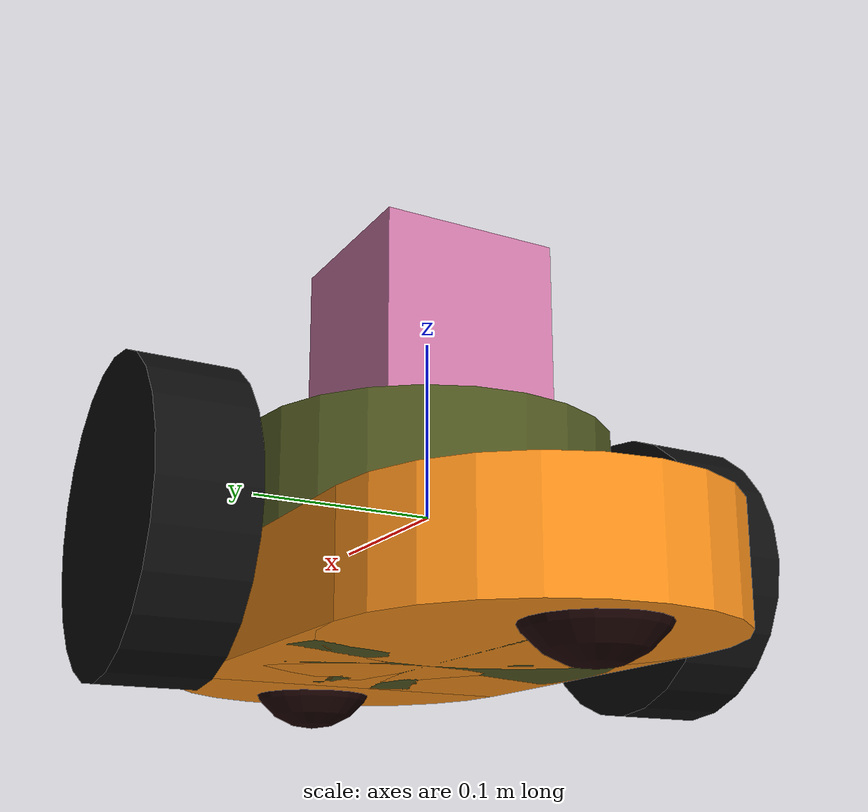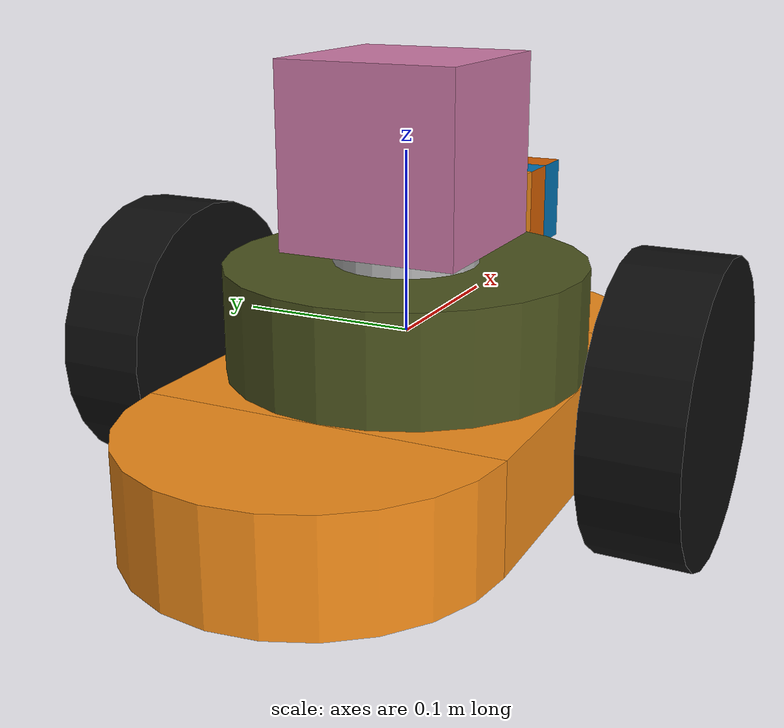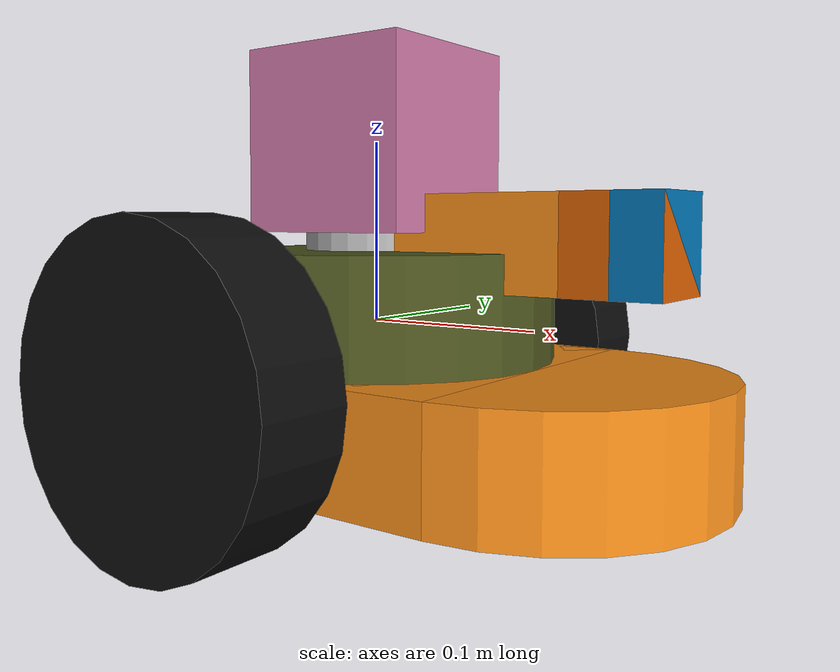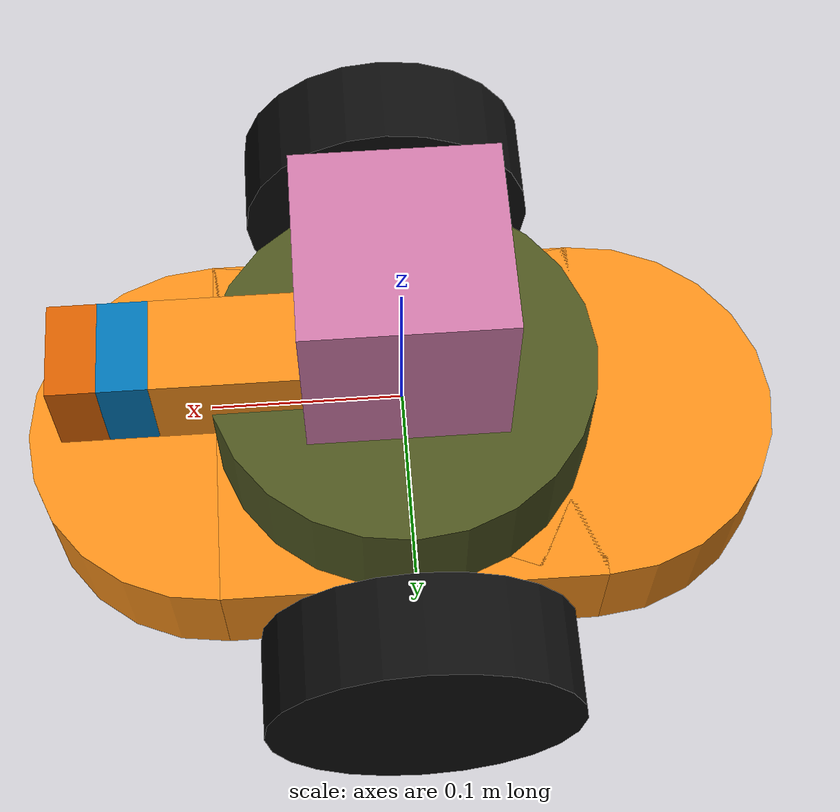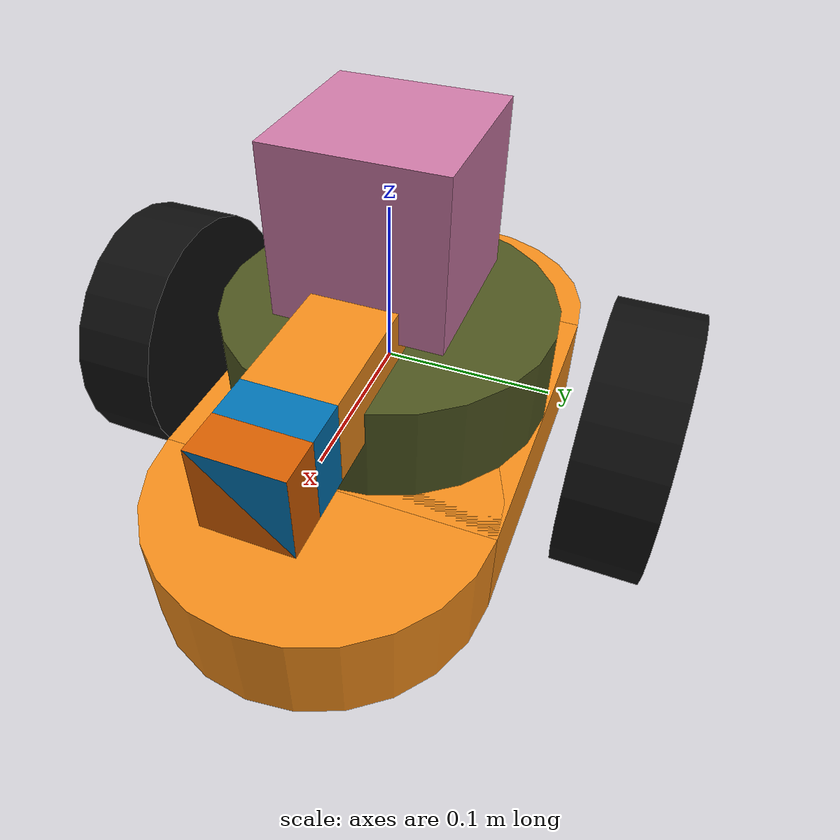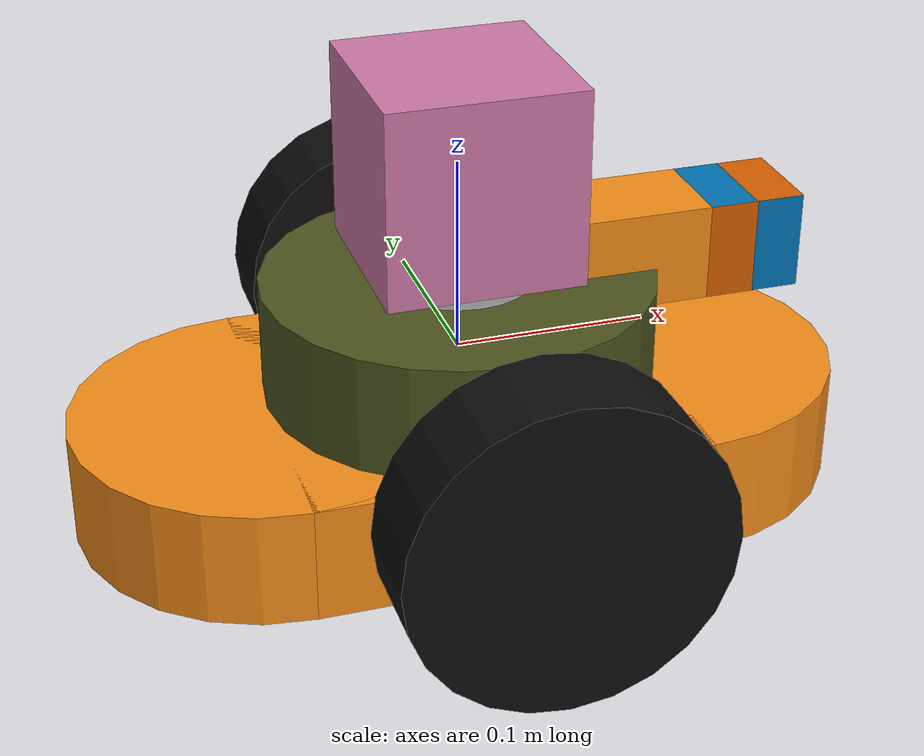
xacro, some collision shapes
<?xml version='1.0'?>

<robot name="my_robot" xmlns:xacro="http://www.ros.org/wiki/xacro">
  <xacro:include filename="$(find my_robot)/urdf/my_robot.gazebo"/>
  <link name="robot_footprint"></link>

  <joint name="robot_footprint_joint" type="fixed">
    <origin xyz="0 0 0" rpy="0 0 0"/>
    <parent link="robot_footprint"/>
    <child link="chassis"/>
  </joint>

  <link name='chassis'>

    <pose>0 0 0.1 0 0 0</pose>

    <inertial>
      <mass value="15.0"/>
      <origin xyz="0.0 0 0" rpy=" 0 0 0"/>
      <inertia ixx="0.1" ixy="0" ixz="0" iyy="0.1" iyz="0" izz="0.1"/>
    </inertial>

    <collision name='chassis_turret_collision'>
      <origin xyz="-0.0 0 -0.02" rpy=" 0 0 0"/>
      <geometry>
        <cylinder length="0.12" radius="0.1"/>
      </geometry>
    </collision>
    <visual name='chassis_turret_visual'>
      <origin xyz="-0.0 0 -0.02" rpy=" 0 0 0"/>
      <geometry>
        <cylinder length="0.12" radius="0.1"/>
      </geometry>
      <material name="green">
        <color rgba="0.3 0.33 0.12 1.0"/>
      </material>
    </visual>

    <visual name='chassis_main_base_visual'>
      <origin xyz="-0.0 0 -0.05" rpy=" 0 0 0"/>
      <geometry>
        <box size="0.2 0.2 0.06"/>
      </geometry>
    </visual>

    <collision name='chassis_front_collision'>
      <origin xyz="0.1 0 -0.05" rpy=" 0 0 0"/>
      <geometry>
        <cylinder length="0.06" radius="0.1"/>
      </geometry>
    </collision>
    <visual name='chassis_front_visual'>
      <origin xyz="0.1 0 -0.05" rpy=" 0 0 0"/>
      <geometry>
        <cylinder length="0.06" radius="0.1"/>
      </geometry>
    </visual>

    <collision name='chassis_rear_collision'>
      <origin xyz="-0.1 0 -0.05" rpy=" 0 0 0"/>
      <geometry>
        <cylinder length="0.06" radius="0.1"/>
      </geometry>
    </collision>
    <visual name='chassis_rear_visual'>
      <origin xyz="-0.1 0 -0.05" rpy=" 0 0 0"/>
      <geometry>
        <cylinder length="0.06" radius="0.1"/>
      </geometry>
    </visual>

    <collision name='lidar_mount_collision'>
      <origin xyz="-0.0 0 0.05" rpy=" 0 0 0"/>
      <geometry>
        <cylinder length="0.04" radius="0.04"/>
      </geometry>
    </collision>
    <visual name='lidar_mount_visual'>
      <origin xyz="-0.0 0 0.05" rpy=" 0 0 0"/>
      <geometry>
        <cylinder length="0.04" radius="0.04"/>
      </geometry>
      <material name="grey">
        <color rgba="0.7 0.7 0.7 1.0"/>
      </material>
    </visual>

    <collision name='chassis_camera_mount_collision'>
      <origin xyz="0.075 0 0.045" rpy=" 0 0 0"/>
      <geometry>
        <box size="0.1 0.05 0.05"/>
      </geometry>
    </collision>
    <visual name='chassis_camera_mount_visual'>
      <origin xyz="0.075 0 0.045" rpy=" 0 0 0"/>
      <geometry>
        <box size="0.1 0.05 0.05"/>
      </geometry>
<gazebo reference="chassis_camera_mount_visual">
      <material name="Gazebo/Orange"/>
</gazebo>>
    </visual>

    <collision name='front_caster_collision'>
      <origin xyz="0.15 0 -0.06" rpy=" 0 0 0"/>
      <geometry>
        <sphere radius="0.0399"/>
      </geometry>
    </collision>

    <visual name='front_caster_visual'>
      <origin xyz="0.15 0 -0.06" rpy=" 0 0 0"/>
      <geometry>
        <sphere radius="0.04"/>
      </geometry>
      <material name="dark_grey">
        <color rgba="0.1 0.01 0.01 1.0"/>
      </material>
    </visual>

    <collision name='back_caster_collision'>
      <origin xyz="-0.15 0 -0.06" rpy=" 0 0 0"/>
      <geometry>
        <sphere radius="0.0399"/>
      </geometry>
      <surface>
        <friction>
          <ode>
            <mu>0</mu>
            <mu2>0</mu2>
            <slip1>1.0</slip1>
            <slip2>1.0</slip2>
          </ode>
        </friction>
      </surface>
    </collision>

    <visual name='back_caster_visual'>
      <origin xyz="-0.15 0 -0.06" rpy=" 0 0 0"/>
      <geometry>
        <sphere radius="0.04"/>
      </geometry>
      <material name="dark_grey">
        <color rgba="0.1 0.01 0.01 1.0"/>
      </material>
    </visual>
  </link>

  <link name='left_wheel'>
    <inertial>
      <mass value="5"/>
      <origin xyz="0 0 0" rpy="0 1.5707 1.5707"/>
      <inertia ixx="0.08" ixy="0" ixz="0" iyy="0.08" iyz="0" izz="0.08"/>
    </inertial>

    <collision name='left_wheel_collision'>
      <origin xyz="0 0 0" rpy="0 1.5707 1.5707"/>
      <geometry>
        <cylinder length="0.05" radius="0.08"/>
      </geometry>
    </collision>

    <visual name='left_wheel_visual'>
      <origin xyz="0 0 0" rpy="0 1.5707 1.5707"/>
      <geometry>
        <cylinder length="0.05" radius="0.08"/>
      </geometry>
      <material name="dark_grey">
        <color rgba="0.05 0.05 0.05 1.0"/>
      </material>
    </visual>
  </link>

  <joint type="continuous" name="left_wheel_hinge">
    <origin xyz="0 0.15 -0.02" rpy="0 0 0"/>
    <child link="left_wheel"/>
    <parent link="chassis"/>
    <axis xyz="0 1 0" rpy="0 0 0"/>
    <limit effort="10000" velocity="1000"/>
    <dynamics damping="1.0" friction="1.0"/>
  </joint>

  <link name='right_wheel'>
    <inertial>
      <mass value="5"/>
      <origin xyz="0 0 0" rpy="0 1.5707 1.5707"/>
      <inertia ixx="0.08" ixy="0" ixz="0" iyy="0.08" iyz="0" izz="0.08"/>
    </inertial>

    <collision name='right_wheel_collision'>
      <origin xyz="0 0 0" rpy="0 1.5707 1.5707"/>
      <geometry>
        <cylinder length="0.05" radius="0.08"/>
      </geometry>
    </collision>

    <visual name='right_wheel_visual'>
      <origin xyz="0 0 0" rpy="0 1.5707 1.5707"/>
      <geometry>
        <cylinder length="0.05" radius="0.08"/>
      </geometry>
      <material name="dark_grey">
        <color rgba="0.05 0.05 0.05 1.0"/>
      </material>
    </visual>
  </link>

  <joint type="continuous" name="right_wheel_hinge">
    <origin xyz="0 -0.15 -0.02" rpy="0 0 0"/>
    <child link="right_wheel"/>
    <parent link="chassis"/>
    <axis xyz="0 1 0" rpy="0 0 0"/>
    <limit effort="10000" velocity="1000"/>
    <dynamics damping="1.0" friction="1.0"/>
  </joint>

  <link name='camera_link'>
    <inertial>
      <mass value="0.1"/>
      <origin xyz="0.05 0.05 0.05" rpy="0 0 0"/>
      <inertia ixx="1e-6" ixy="0" ixz="0" iyy="1e-6" iyz="0" izz="1e-6"/>
    </inertial>

    <collision name='camera_collision'>
      <origin xyz="0 0 0" rpy="0 0 0"/>
      <geometry>
        <box size="0.05 0.05 0.05"/>
      </geometry>
    </collision>

    <visual name='camera_visual'>
      <origin xyz="0 0 0" rpy="0 0 0"/>
      <geometry>
        <box size="0.05 0.05 0.05"/>
      </geometry>
    </visual>
  </link>

  <joint type="fixed" name="camera_joint">
    <origin xyz="0.15 0 0.045" rpy="0 0 0"/>
    <child link="camera_link"/>
    <parent link="chassis"/>
    <axis xyz="0 1 0" rpy="0 0 0"/>
  </joint>

  <joint name="camera_optical_joint" type="fixed">
    <origin xyz="0 0 0" rpy="-1.5707 0 -1.5707"/>
    <parent link="camera_link"/>
    <child link="camera_link_optical"/>
  </joint>

  <link name="camera_link_optical">
    <inertial>
      <mass value="0.1"/>
      <origin xyz="0.05 0.05 0.05" rpy="0 0 0"/>
      <inertia ixx="1e-6" ixy="0" ixz="0" iyy="1e-6" iyz="0" izz="1e-6"/>
    </inertial>

    <collision name='camera_link_optical_collision'>
      <origin xyz="0 0 0" rpy="0 0 0"/>
      <geometry>
        <box size="0.05 0.05 0.05"/>
      </geometry>
    </collision>

    <visual name='camera_link_optical_visual'>
      <origin xyz="0 0 0" rpy="0 0 0"/>
      <geometry>
        <box size="0.05 0.05 0.05"/>
      </geometry>
    </visual>
  </link>

  <link name='hokuyo'>
    <inertial>
      <mass value="1e-5"/>
      <origin xyz="0 0 0" rpy="0 0 0"/>
      <inertia ixx="1e-6" ixy="0" ixz="0" iyy="1e-6" iyz="0" izz="1e-6"/>
    </inertial>

    <collision name='hokuyo_collision'>
      <origin xyz="0 0 0" rpy="0 0 0"/>
      <geometry>
        <box size="0.1 0.1 0.1"/>
      </geometry>
    </collision>

    <visual name='hokuyo_visual'>
      <origin xyz="0 0 0" rpy="0 0 0"/>
      <geometry>
        <mesh filename="package://my_robot/meshes/hokuyo.dae"/>
      </geometry>
    </visual>
  </link>

  <joint type="fixed" name="hokuyo_joint">
    <origin xyz="0 0 0.1" rpy="0 0 0"/>
    <child link="hokuyo"/>
    <parent link="chassis"/>
    <axis xyz="0 1 0" rpy="0 0 0"/>
  </joint>

<gazebo reference="chassis">
  <material>Gazebo/Orange</material>
</gazebo>
</robot>
